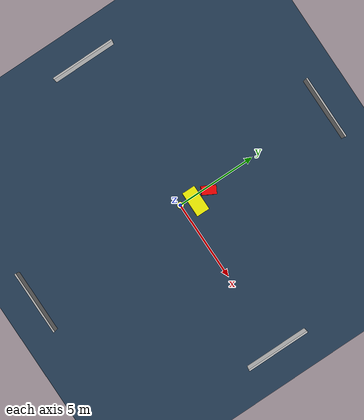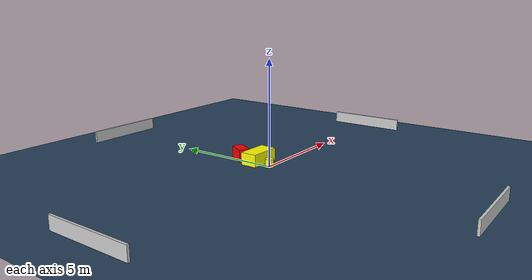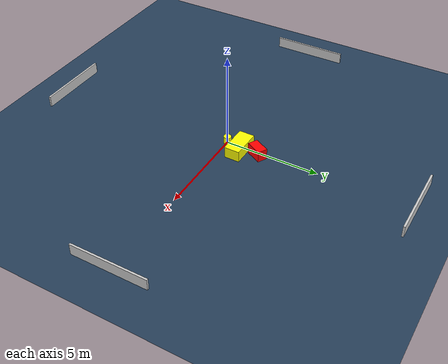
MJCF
<?xml version="1.0" ?>
<mujoco model="generated_environment">
  <option timestep="0.01" integrator="RK4" cone="elliptic"/>
  <default>
    <geom density="1"/>
  </default>
  <asset>
    <texture builtin="gradient" height="3072" name="skybox" rgb1="0.3 0.5 0.7" rgb2="0 0 0" type="skybox" width="512"/>
    <texture builtin="checker" height="300" name="groundplane" rgb1="0.2 0.3 0.4" rgb2="0.1 0.2 0.3" type="2d" width="300"/>
    <material name="groundplane" reflectance="0.2" texrepeat="5 5" texture="groundplane"/>
  </asset>
  <worldbody>
    <light dir="0 0 -1" directional="true" pos="0 0 1.5"/>
    <geom condim="3" friction="0.5 0.005 0.001" material="groundplane" name="floor" pos="0 0 0" size="0 0 0.05" type="plane"/>
    <body name="walls">
      <geom name="wall_1" condim="4" pos="-10.0 0.0 0.3" rgba="0.800000011920929 0.800000011920929 0.800000011920929 1.0" size="0.05 2.0 0.3" type="box"/>
      <geom name="wall_2" condim="4" pos="10.0 0.0 0.3" rgba="0.800000011920929 0.800000011920929 0.800000011920929 1.0" size="0.05 2.0 0.3" type="box"/>
      <geom name="wall_3" condim="4" pos="0.0 -10.0 0.3" rgba="0.800000011920929 0.800000011920929 0.800000011920929 1.0" size="2.0 0.05 0.3" type="box"/>
      <geom name="wall_4" condim="4" pos="0.0 10.0 0.3" rgba="0.800000011920929 0.800000011920929 0.800000011920929 1.0" size="2.0 0.05 0.3" type="box"/>
    </body>
    <body name="robot">
      <joint name="joint_x" type="slide" pos="0 0 0" axis="1 0 0"/>
      <joint name="joint_y" type="slide" pos="0 0 0" axis="0 1 0"/>
      <geom name="robot" type="cylinder" pos="0.0 0.0 0.2" size="0.2 0.2 0.0" mass="5.0" friction="1.0 0.005 0.0001" condim="4" rgba="1.0 1.0 0.0 1.0"/>
    </body>
    <body name="obstacle_1_movable">
      <geom name="obstacle_1_movable" condim="4" pos="0.2950538569882348 0.8524653756275988 0.3" euler="0 0 89.41648479541918" friction="0.0 0.005 0.001" rgba="1.0 1.0 0.0 1.0" size="0.4065651479269305 0.7837044737502741 0.3" type="box" mass="0.1"/>
      <joint type="free"/>
    </body>
    <body name="obstacle_2_static">
      <geom name="obstacle_2_static" condim="4" pos="0.18461642182526372 1.8266557528820115 0.3" euler="0 0 61.36963802801171" friction="0.0 0.005 0.001" rgba="1.0 0.0 0.0 1.0" size="0.4419824803677482 0.26280552942188434 0.3" type="box"/>
    </body>
  </worldbody>
  <actuator>
    <motor name="actuator_x" joint="joint_x" gear="1" ctrlrange="-1 1"/>
    <motor name="actuator_y" joint="joint_y" gear="1" ctrlrange="-1 1"/>
  </actuator>
</mujoco>
